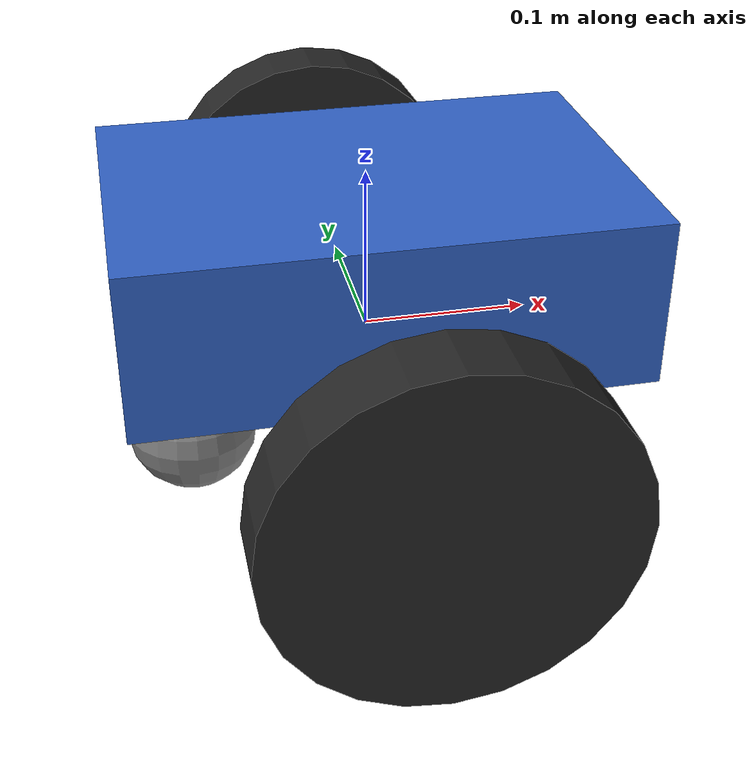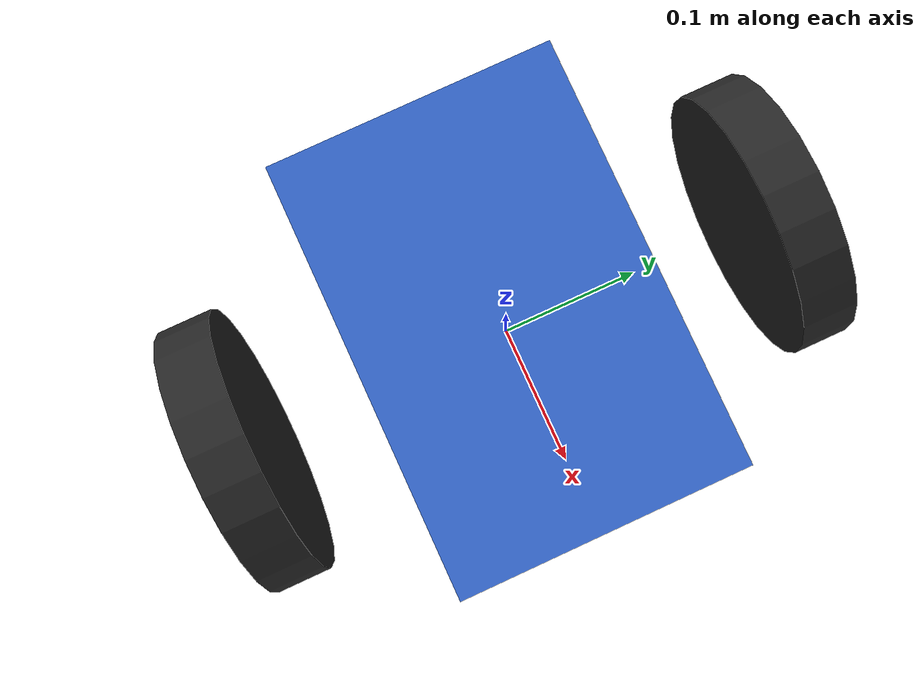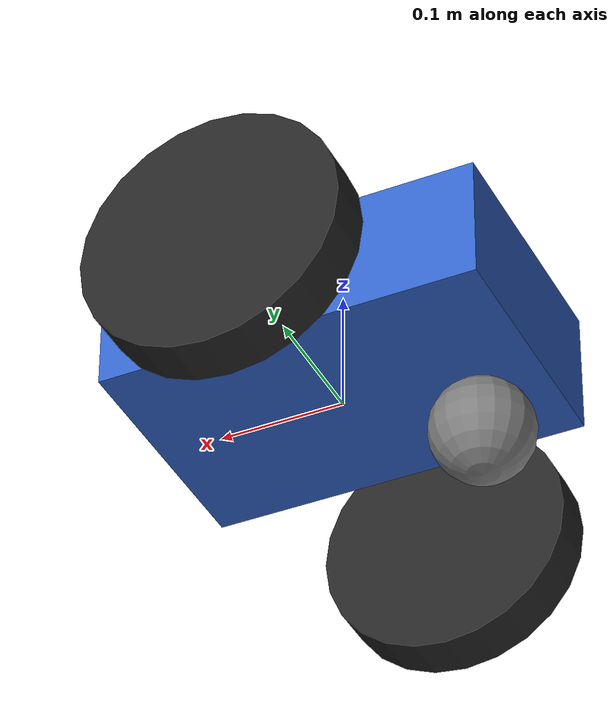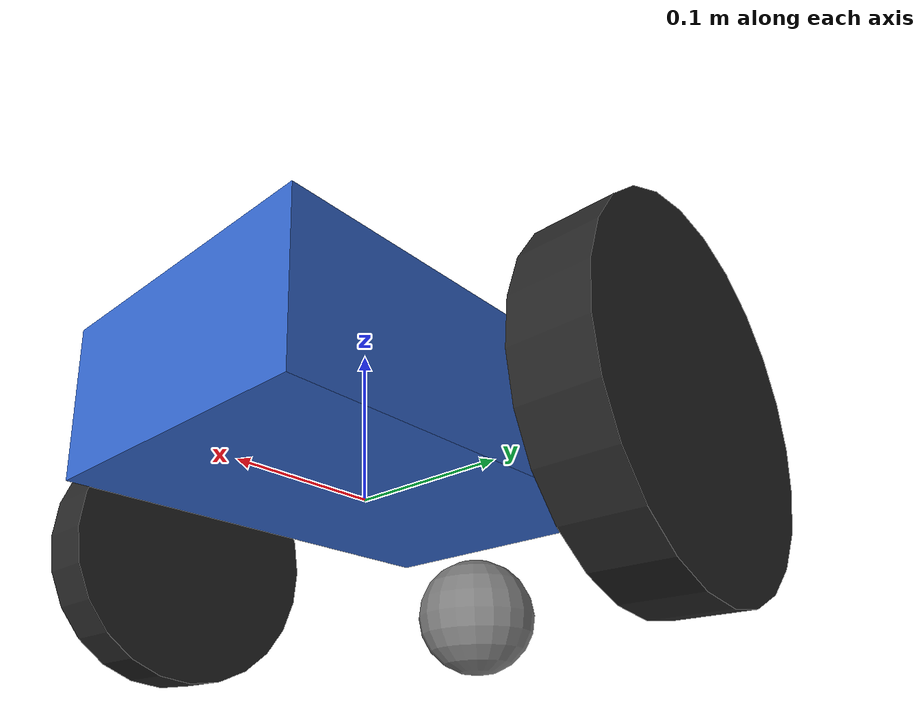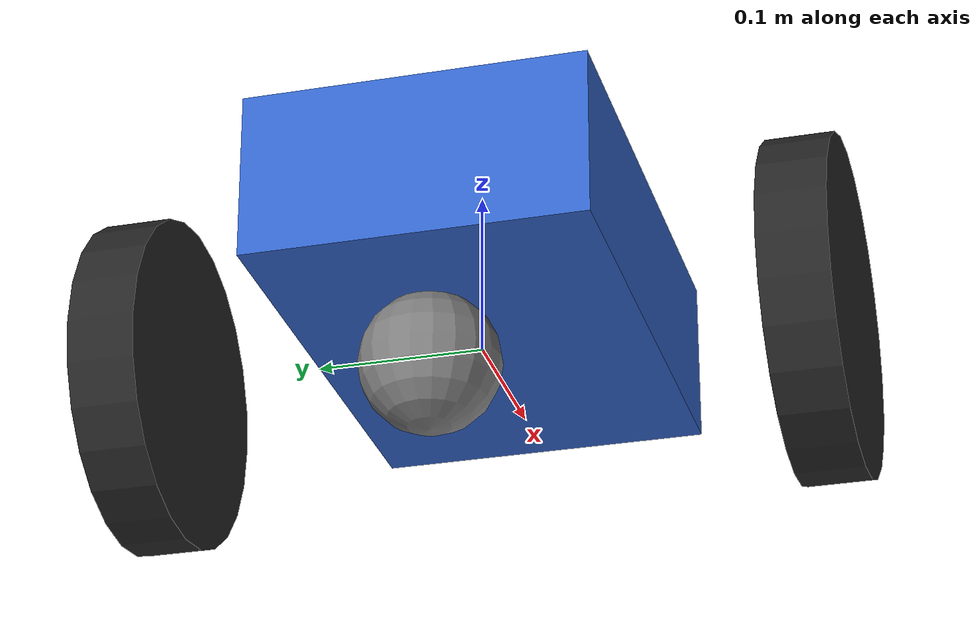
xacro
<?xml version="1.0"?>
<robot name="diffbot" xmlns:xacro="http://www.ros.org/wiki/xacro">

  <!-- ═══════════════════ Arguments ════════════════════════════════════ -->
  <xacro:arg name="namespace"       default="diffbot"/>
  <!-- Accepted but unused — lets the launch file pass them unconditionally. -->
  <xacro:arg name="prefix"          default=""/>
  <xacro:arg name="gazebo_ignition" default="true"/>

  <!-- ═══════════════════ Geometry constants ═══════════════════════════ -->
  <xacro:property name="wheel_radius"  value="0.10"/>
  <xacro:property name="wheel_width"   value="0.04"/>
  <xacro:property name="wheel_sep"     value="0.40"/>  <!-- centre-to-centre, m -->
  <xacro:property name="base_length"   value="0.30"/>
  <xacro:property name="base_width"    value="0.20"/>
  <xacro:property name="base_height"   value="0.10"/>
  <xacro:property name="caster_radius" value="0.04"/>

  <!-- base_link origin sits at wheel-axle height; spawn robot at z=wheel_radius. -->
  <!-- Body visual is offset upward so it sits on top of the axle plane.          -->
  <xacro:property name="body_z"    value="${base_height / 2.0}"/>
  <!-- Caster rear position (x negative = towards back of robot).                -->
  <xacro:property name="caster_x"  value="${-(base_length / 2.0 - caster_radius)}"/>
  <!-- Caster z in base_link frame so the sphere touches the ground plane.       -->
  <xacro:property name="caster_z"  value="${-(wheel_radius - caster_radius)}"/>

  <!-- ═══════════════════ base_link ════════════════════════════════════ -->
  <link name="base_link">
    <visual>
      <origin xyz="0 0 ${body_z}" rpy="0 0 0"/>
      <geometry>
        <box size="${base_length} ${base_width} ${base_height}"/>
      </geometry>
      <material name="blue"><color rgba="0.2 0.4 0.8 1.0"/></material>
    </visual>
    <collision>
      <origin xyz="0 0 ${body_z}" rpy="0 0 0"/>
      <geometry>
        <box size="${base_length} ${base_width} ${base_height}"/>
      </geometry>
    </collision>
    <inertial>
      <mass value="2.0"/>
      <inertia
        ixx="${2.0/12.0 * (base_width*base_width   + base_height*base_height)}"
        iyy="${2.0/12.0 * (base_length*base_length + base_height*base_height)}"
        izz="${2.0/12.0 * (base_length*base_length + base_width*base_width)}"
        ixy="0" ixz="0" iyz="0"/>
    </inertial>
  </link>

  <!-- ═══════════════════ Left wheel ═══════════════════════════════════ -->
  <link name="left_wheel_link">
    <visual>
      <origin xyz="0 0 0" rpy="${pi/2} 0 0"/>
      <geometry><cylinder radius="${wheel_radius}" length="${wheel_width}"/></geometry>
      <material name="dark_grey"><color rgba="0.15 0.15 0.15 1.0"/></material>
    </visual>
    <collision>
      <origin xyz="0 0 0" rpy="${pi/2} 0 0"/>
      <geometry><cylinder radius="${wheel_radius}" length="${wheel_width}"/></geometry>
    </collision>
    <inertial>
      <mass value="0.5"/>
      <!-- cylinder: Ixx=Iyy=m/12*(3r²+h²), Izz=m/2*r² -->
      <inertia
        ixx="${0.5/12.0*(3*wheel_radius*wheel_radius + wheel_width*wheel_width)}"
        iyy="${0.5/12.0*(3*wheel_radius*wheel_radius + wheel_width*wheel_width)}"
        izz="${0.5/2.0 * wheel_radius*wheel_radius}"
        ixy="0" ixz="0" iyz="0"/>
    </inertial>
  </link>

  <joint name="left_wheel_joint" type="continuous">
    <parent link="base_link"/>
    <child link="left_wheel_link"/>
    <origin xyz="0 ${wheel_sep/2.0} 0" rpy="0 0 0"/>
    <axis xyz="0 1 0"/>
  </joint>

  <!-- ═══════════════════ Right wheel ══════════════════════════════════ -->
  <link name="right_wheel_link">
    <visual>
      <origin xyz="0 0 0" rpy="${pi/2} 0 0"/>
      <geometry><cylinder radius="${wheel_radius}" length="${wheel_width}"/></geometry>
      <material name="dark_grey"/>
    </visual>
    <collision>
      <origin xyz="0 0 0" rpy="${pi/2} 0 0"/>
      <geometry><cylinder radius="${wheel_radius}" length="${wheel_width}"/></geometry>
    </collision>
    <inertial>
      <mass value="0.5"/>
      <inertia
        ixx="${0.5/12.0*(3*wheel_radius*wheel_radius + wheel_width*wheel_width)}"
        iyy="${0.5/12.0*(3*wheel_radius*wheel_radius + wheel_width*wheel_width)}"
        izz="${0.5/2.0 * wheel_radius*wheel_radius}"
        ixy="0" ixz="0" iyz="0"/>
    </inertial>
  </link>

  <joint name="right_wheel_joint" type="continuous">
    <parent link="base_link"/>
    <child link="right_wheel_link"/>
    <origin xyz="0 ${-wheel_sep/2.0} 0" rpy="0 0 0"/>
    <axis xyz="0 1 0"/>
  </joint>

  <!-- ═══════════════════ Caster (passive, frictionless) ═══════════════ -->
  <link name="caster_link">
    <visual>
      <geometry><sphere radius="${caster_radius}"/></geometry>
      <material name="grey"><color rgba="0.5 0.5 0.5 1.0"/></material>
    </visual>
    <collision>
      <geometry><sphere radius="${caster_radius}"/></geometry>
    </collision>
    <inertial>
      <mass value="0.1"/>
      <!-- sphere: I = 2/5 * m * r² -->
      <inertia
        ixx="${2.0/5.0 * 0.1 * caster_radius*caster_radius}"
        iyy="${2.0/5.0 * 0.1 * caster_radius*caster_radius}"
        izz="${2.0/5.0 * 0.1 * caster_radius*caster_radius}"
        ixy="0" ixz="0" iyz="0"/>
    </inertial>
  </link>

  <joint name="caster_joint" type="fixed">
    <parent link="base_link"/>
    <child link="caster_link"/>
    <origin xyz="${caster_x} 0 ${caster_z}" rpy="0 0 0"/>
  </joint>

  <!-- Frictionless caster so it can swivel freely on the ground. -->
  <gazebo reference="caster_link">
    <mu1>0.0</mu1>
    <mu2>0.0</mu2>
  </gazebo>

  <!-- ═══════════════════ ros2_control ══════════════════════════════════ -->
  <ros2_control name="GazeboSimSystem" type="system">
    <hardware>
      <plugin>gz_ros2_control/GazeboSimSystem</plugin>
    </hardware>
    <joint name="left_wheel_joint">
      <command_interface name="velocity">
        <param name="min">-10</param>
        <param name="max">10</param>
      </command_interface>
      <state_interface name="position"/>
      <state_interface name="velocity"/>
    </joint>
    <joint name="right_wheel_joint">
      <command_interface name="velocity">
        <param name="min">-10</param>
        <param name="max">10</param>
      </command_interface>
      <state_interface name="position"/>
      <state_interface name="velocity"/>
    </joint>
  </ros2_control>

  <!-- ═══════════════════ Gazebo system plugin ═════════════════════════ -->
  <gazebo>
    <plugin filename="libgz_ros2_control-system.so"
            name="gz_ros2_control::GazeboSimROS2ControlPlugin">
      <parameters>$(find gz_ros2_control_manager)/config/diffbot_controllers.yaml</parameters>
      <ros>
        <namespace>/$(arg namespace)</namespace>
      </ros>
    </plugin>
  </gazebo>

</robot>
